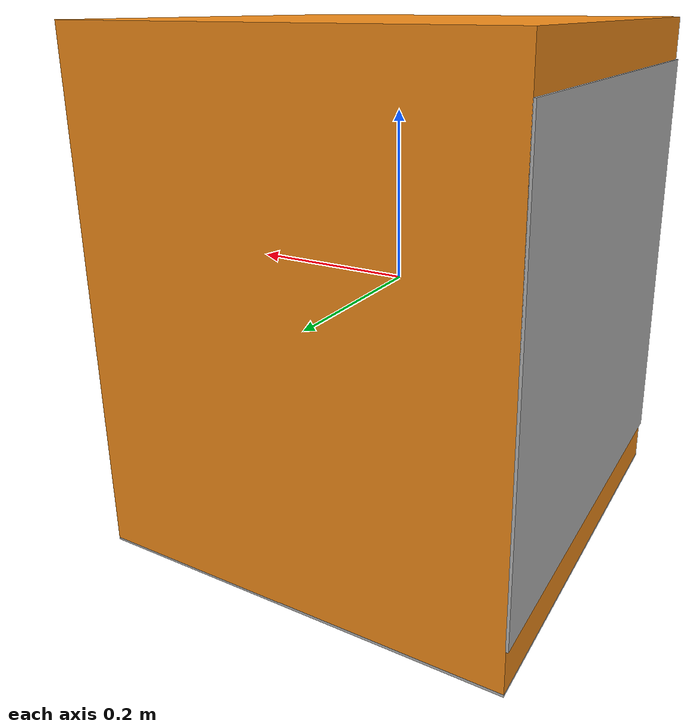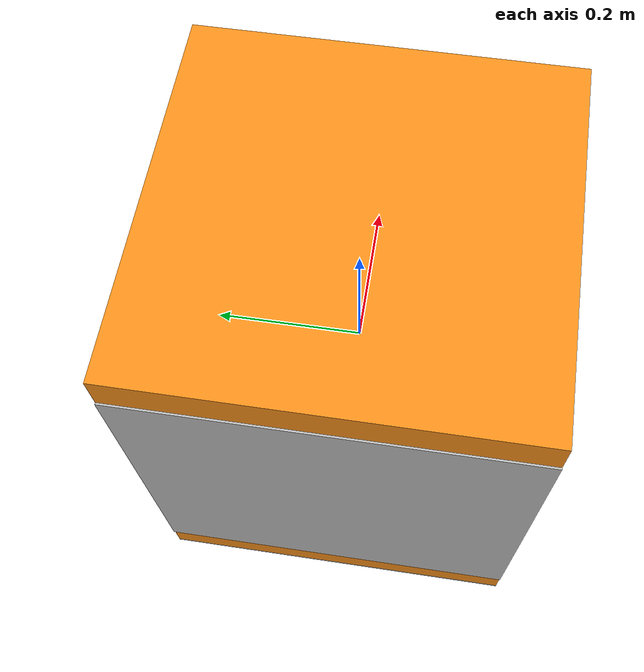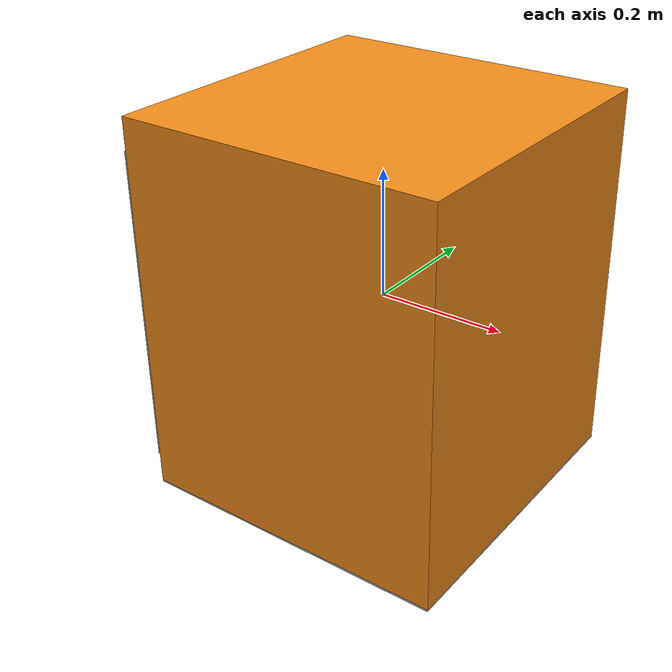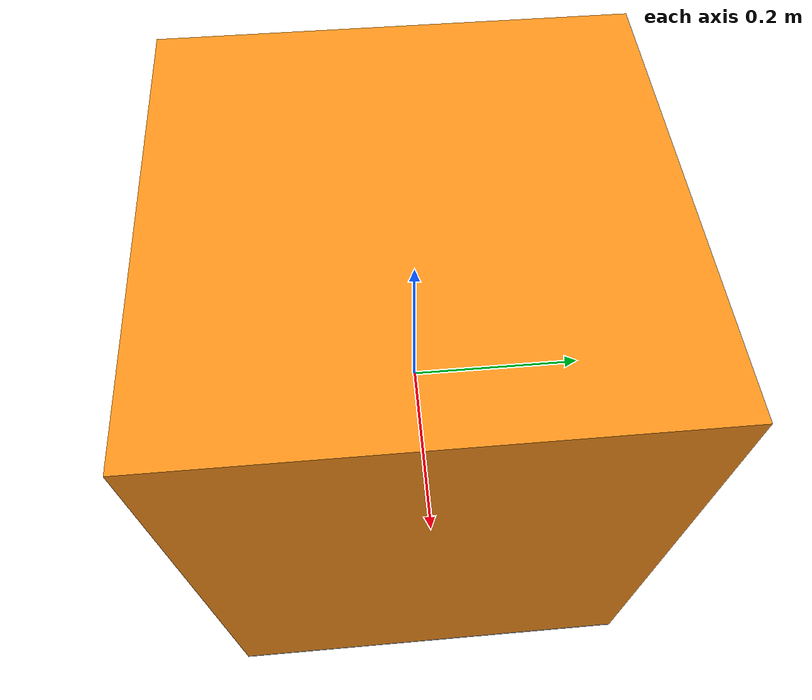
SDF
<?xml version='1.0'?>
<sdf version='1.6'>
  <model name='aruco_box'>
    <!-- Pose will be set via spawn_entity.py arguments -->
    <!-- static=true: 중력 영향 없이 고정된 위치에 유지 -->
    <static>true</static>

    <link name='box_link'>
      <gravity>false</gravity>

      <inertial>
        <mass>1.0</mass>
        <inertia>
          <ixx>0.166667</ixx>
          <ixy>0</ixy>
          <ixz>0</ixz>
          <iyy>0.166667</iyy>
          <iyz>0</iyz>
          <izz>0.083333</izz>
        </inertia>
      </inertial>

      <!-- Main box body -->
      <visual name='box_visual'>
        <geometry>
          <box>
            <size>0.50 0.50 0.6</size>
          </box>
        </geometry>
        <material>
          <script>
            <uri>file://media/materials/scripts/gazebo.material</uri>
            <name>Gazebo/Orange</name>
          </script>
        </material>
      </visual>

      <!-- Planar collision -->
      <collision name='box_collision'>
        <geometry>
          <box>
            <size>0.50 0.50 0.6</size>
          </box>
        </geometry>
      </collision>

      <!-- ArUco marker on -X face (50x50 cm) -->
      <visual name='marker_aruco_neg_x'>
        <pose>-0.251 0 0 0 0 0</pose>
        <geometry>
          <box>
            <size>0.003 0.50 0.50</size>
          </box>
        </geometry>
        <material>
          <script>
            <uri>model://aruco_box/materials/scripts</uri>
            <uri>model://aruco_box/materials/textures</uri>
            <name>Aruco/Marker11</name>
          </script>
        </material>
      </visual>

      <!-- ArUco marker on -Z face (50x50 cm) -->
      <visual name='marker_aruco_neg_z'>
        <pose>0 0 -0.301 1.5708 0 -1.5708</pose>
        <geometry>
          <box>
            <size>0.50 0.003 0.50</size>
          </box>
        </geometry>
        <material>
          <script>
            <uri>model://aruco_box/materials/scripts</uri>
            <uri>model://aruco_box/materials/textures</uri>
            <name>Aruco/Marker11</name>
          </script>
        </material>
      </visual>
    </link>
  </model>
</sdf>
